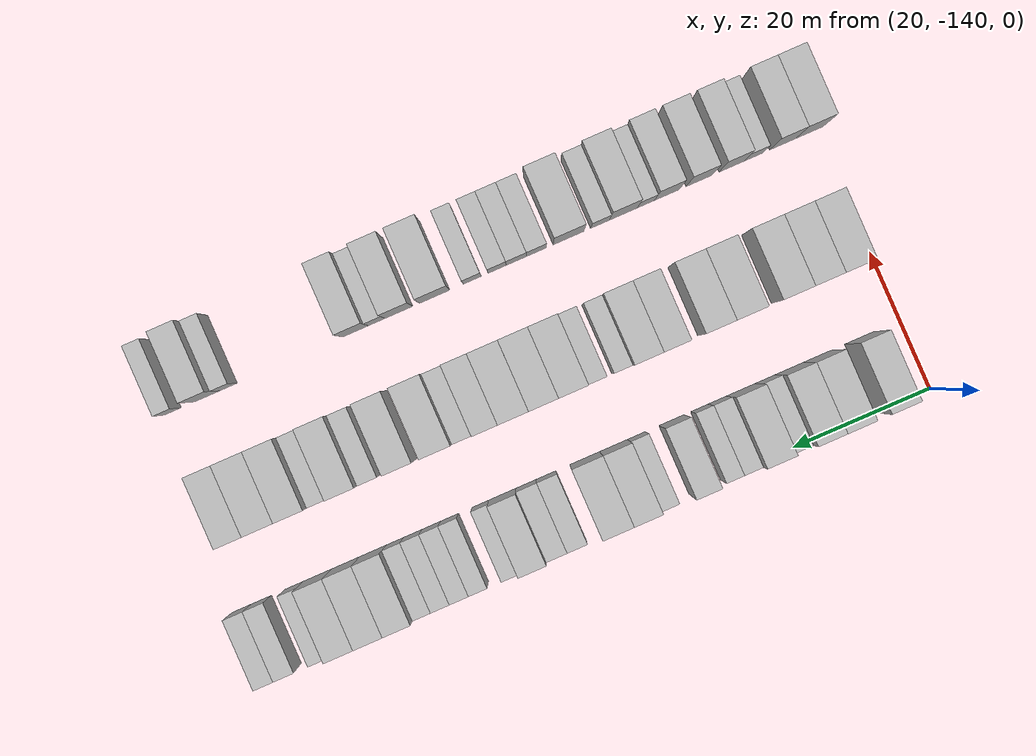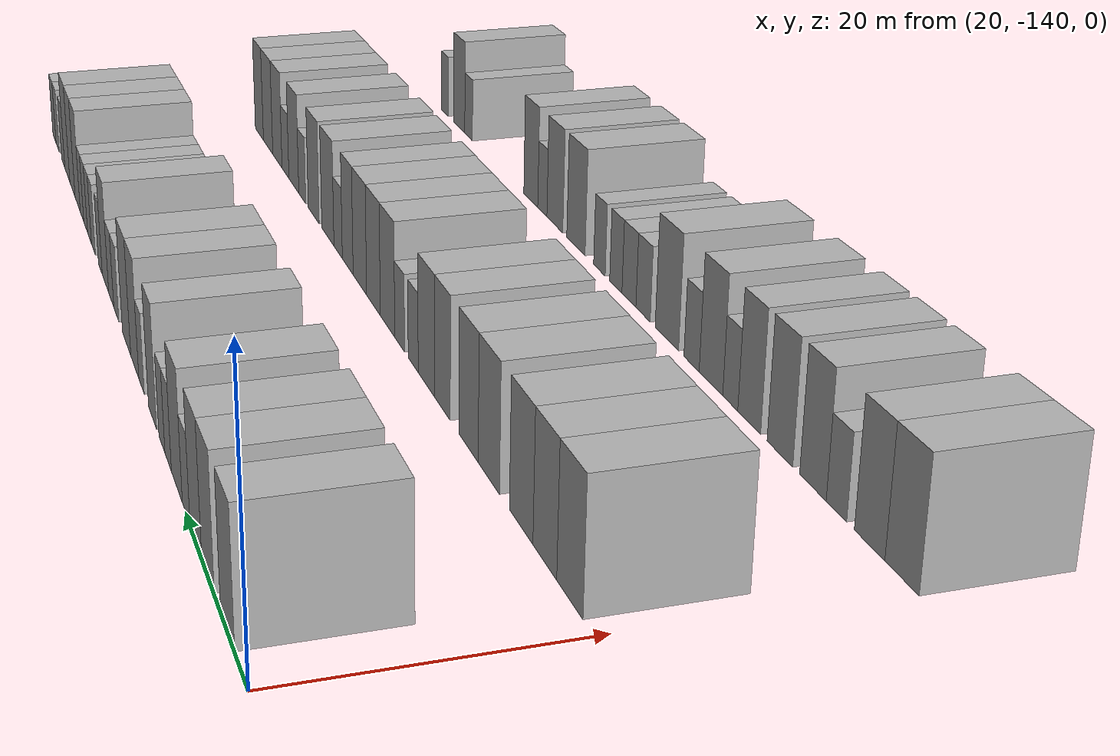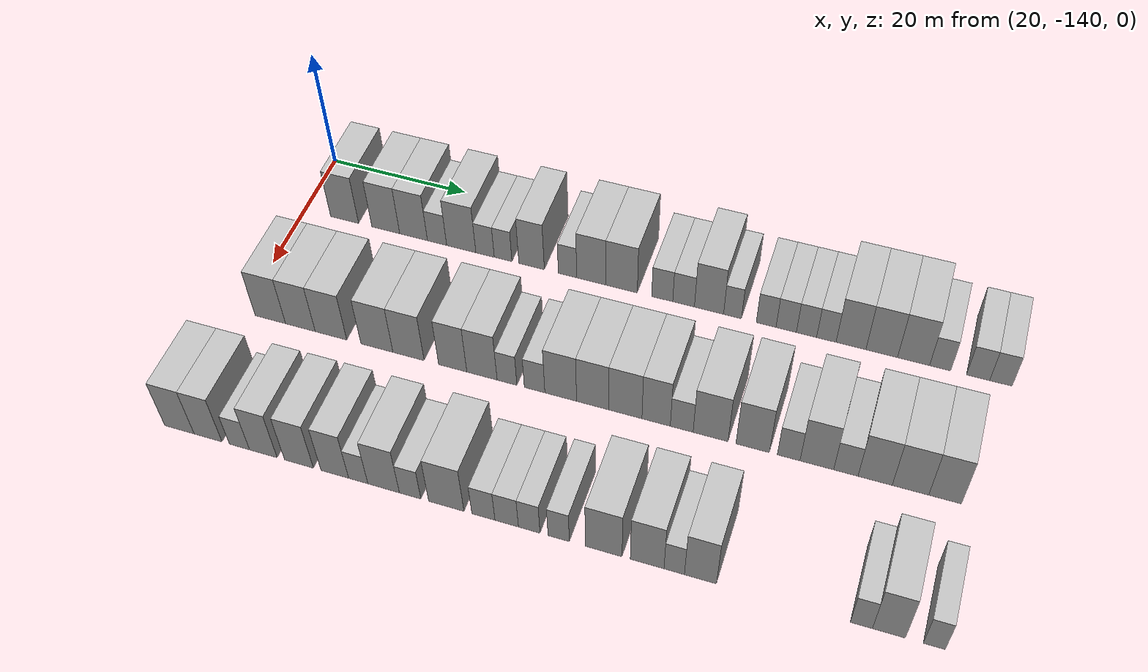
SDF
<sdf version="1.6">
 <world name="default">
  <model name="building_18">
   <static>1</static>
   <pose>25.0000 -134.0115 0 0.000000 0.000000 0.000000</pose>
   <link name="link">
    <pose>0 0 4.50 0 0 0</pose>
    <collision name="collision"><geometry><box><size>10.0000 4.2210 9.0000</size></box></geometry></collision>
    <visual name="visual">
     <cast_shadows>0</cast_shadows>
     <geometry><box><size>10.0000 4.2210 9.0000</size></box></geometry>
     <material>
      <script>
       <uri>model://HANNAS_wall/materials/scripts</uri>
       <uri>model://HANNAS_wall/materials/textures</uri>
       <name>vrc/HANNAS_wall</name>
      </script>
     </material>
    </visual>
   </link>
  </model>
  <model name="building_19">
   <static>1</static>
   <pose>25.0000 -127.8143 0 0.000000 0.000000 0.000000</pose>
   <link name="link">
    <pose>0 0 4.50 0 0 0</pose>
    <collision name="collision"><geometry><box><size>10.0000 4.1734 9.0000</size></box></geometry></collision>
    <visual name="visual">
     <cast_shadows>0</cast_shadows>
     <geometry><box><size>10.0000 4.1734 9.0000</size></box></geometry>
     <material>
      <script>
       <uri>model://HANNAS_wall/materials/scripts</uri>
       <uri>model://HANNAS_wall/materials/textures</uri>
       <name>vrc/HANNAS_wall</name>
      </script>
     </material>
    </visual>
   </link>
  </model>
  <model name="building_20">
   <static>1</static>
   <pose>25.0000 -123.6665 0 0.000000 0.000000 0.000000</pose>
   <link name="link">
    <pose>0 0 4.50 0 0 0</pose>
    <collision name="collision"><geometry><box><size>10.0000 4.1221 9.0000</size></box></geometry></collision>
    <visual name="visual">
     <cast_shadows>0</cast_shadows>
     <geometry><box><size>10.0000 4.1221 9.0000</size></box></geometry>
     <material>
      <script>
       <uri>model://HANNAS_wall/materials/scripts</uri>
       <uri>model://HANNAS_wall/materials/textures</uri>
       <name>vrc/HANNAS_wall</name>
      </script>
     </material>
    </visual>
   </link>
  </model>
  <model name="building_21">
   <static>1</static>
   <pose>25.0000 -120.1904 0 0.000000 0.000000 0.000000</pose>
   <link name="link">
    <pose>0 0 3.00 0 0 0</pose>
    <collision name="collision"><geometry><box><size>10.0000 2.8301 6.0000</size></box></geometry></collision>
    <visual name="visual">
     <cast_shadows>0</cast_shadows>
     <geometry><box><size>10.0000 2.8301 6.0000</size></box></geometry>
     <material>
      <script>
       <uri>model://HANNAS_wall/materials/scripts</uri>
       <uri>model://HANNAS_wall/materials/textures</uri>
       <name>vrc/HANNAS_wall</name>
      </script>
     </material>
    </visual>
   </link>
  </model>
  <model name="building_22">
   <static>1</static>
   <pose>25.0000 -116.6397 0 0.000000 0.000000 0.000000</pose>
   <link name="link">
    <pose>0 0 4.50 0 0 0</pose>
    <collision name="collision"><geometry><box><size>10.0000 4.2713 9.0000</size></box></geometry></collision>
    <visual name="visual">
     <cast_shadows>0</cast_shadows>
     <geometry><box><size>10.0000 4.2713 9.0000</size></box></geometry>
     <material>
      <script>
       <uri>model://HANNAS_wall/materials/scripts</uri>
       <uri>model://HANNAS_wall/materials/textures</uri>
       <name>vrc/HANNAS_wall</name>
      </script>
     </material>
    </visual>
   </link>
  </model>
  <model name="building_23">
   <static>1</static>
   <pose>25.0000 -113.1678 0 0.000000 0.000000 0.000000</pose>
   <link name="link">
    <pose>0 0 3.00 0 0 0</pose>
    <collision name="collision"><geometry><box><size>10.0000 2.6727 6.0000</size></box></geometry></collision>
    <visual name="visual">
     <cast_shadows>0</cast_shadows>
     <geometry><box><size>10.0000 2.6727 6.0000</size></box></geometry>
     <material>
      <script>
       <uri>model://HANNAS_wall/materials/scripts</uri>
       <uri>model://HANNAS_wall/materials/textures</uri>
       <name>vrc/HANNAS_wall</name>
      </script>
     </material>
    </visual>
   </link>
  </model>
  <model name="building_24">
   <static>1</static>
   <pose>25.0000 -110.5505 0 0.000000 0.000000 0.000000</pose>
   <link name="link">
    <pose>0 0 3.00 0 0 0</pose>
    <collision name="collision"><geometry><box><size>10.0000 2.5619 6.0000</size></box></geometry></collision>
    <visual name="visual">
     <cast_shadows>0</cast_shadows>
     <geometry><box><size>10.0000 2.5619 6.0000</size></box></geometry>
     <material>
      <script>
       <uri>model://HANNAS_wall/materials/scripts</uri>
       <uri>model://HANNAS_wall/materials/textures</uri>
       <name>vrc/HANNAS_wall</name>
      </script>
     </material>
    </visual>
   </link>
  </model>
  <model name="building_25">
   <static>1</static>
   <pose>25.0000 -106.4432 0 0.000000 0.000000 0.000000</pose>
   <link name="link">
    <pose>0 0 4.50 0 0 0</pose>
    <collision name="collision"><geometry><box><size>10.0000 3.6527 9.0000</size></box></geometry></collision>
    <visual name="visual">
     <cast_shadows>0</cast_shadows>
     <geometry><box><size>10.0000 3.6527 9.0000</size></box></geometry>
     <material>
      <script>
       <uri>model://HANNAS_wall/materials/scripts</uri>
       <uri>model://HANNAS_wall/materials/textures</uri>
       <name>vrc/HANNAS_wall</name>
      </script>
     </material>
    </visual>
   </link>
  </model>
  <model name="building_26">
   <static>1</static>
   <pose>25.0000 -101.3097 0 0.000000 0.000000 0.000000</pose>
   <link name="link">
    <pose>0 0 3.00 0 0 0</pose>
    <collision name="collision"><geometry><box><size>10.0000 2.6143 6.0000</size></box></geometry></collision>
    <visual name="visual">
     <cast_shadows>0</cast_shadows>
     <geometry><box><size>10.0000 2.6143 6.0000</size></box></geometry>
     <material>
      <script>
       <uri>model://HANNAS_wall/materials/scripts</uri>
       <uri>model://HANNAS_wall/materials/textures</uri>
       <name>vrc/HANNAS_wall</name>
      </script>
     </material>
    </visual>
   </link>
  </model>
  <model name="building_27">
   <static>1</static>
   <pose>25.0000 -97.9586 0 0.000000 0.000000 0.000000</pose>
   <link name="link">
    <pose>0 0 4.50 0 0 0</pose>
    <collision name="collision"><geometry><box><size>10.0000 4.0878 9.0000</size></box></geometry></collision>
    <visual name="visual">
     <cast_shadows>0</cast_shadows>
     <geometry><box><size>10.0000 4.0878 9.0000</size></box></geometry>
     <material>
      <script>
       <uri>model://HANNAS_wall/materials/scripts</uri>
       <uri>model://HANNAS_wall/materials/textures</uri>
       <name>vrc/HANNAS_wall</name>
      </script>
     </material>
    </visual>
   </link>
  </model>
  <model name="building_28">
   <static>1</static>
   <pose>25.0000 -93.7101 0 0.000000 0.000000 0.000000</pose>
   <link name="link">
    <pose>0 0 4.50 0 0 0</pose>
    <collision name="collision"><geometry><box><size>10.0000 4.4091 9.0000</size></box></geometry></collision>
    <visual name="visual">
     <cast_shadows>0</cast_shadows>
     <geometry><box><size>10.0000 4.4091 9.0000</size></box></geometry>
     <material>
      <script>
       <uri>model://HANNAS_wall/materials/scripts</uri>
       <uri>model://HANNAS_wall/materials/textures</uri>
       <name>vrc/HANNAS_wall</name>
      </script>
     </material>
    </visual>
   </link>
  </model>
  <model name="building_29">
   <static>1</static>
   <pose>25.0000 -88.0533 0 0.000000 0.000000 0.000000</pose>
   <link name="link">
    <pose>0 0 3.00 0 0 0</pose>
    <collision name="collision"><geometry><box><size>10.0000 2.9044 6.0000</size></box></geometry></collision>
    <visual name="visual">
     <cast_shadows>0</cast_shadows>
     <geometry><box><size>10.0000 2.9044 6.0000</size></box></geometry>
     <material>
      <script>
       <uri>model://HANNAS_wall/materials/scripts</uri>
       <uri>model://HANNAS_wall/materials/textures</uri>
       <name>vrc/HANNAS_wall</name>
      </script>
     </material>
    </visual>
   </link>
  </model>
  <model name="building_30">
   <static>1</static>
   <pose>25.0000 -85.1096 0 0.000000 0.000000 0.000000</pose>
   <link name="link">
    <pose>0 0 3.00 0 0 0</pose>
    <collision name="collision"><geometry><box><size>10.0000 2.9830 6.0000</size></box></geometry></collision>
    <visual name="visual">
     <cast_shadows>0</cast_shadows>
     <geometry><box><size>10.0000 2.9830 6.0000</size></box></geometry>
     <material>
      <script>
       <uri>model://HANNAS_wall/materials/scripts</uri>
       <uri>model://HANNAS_wall/materials/textures</uri>
       <name>vrc/HANNAS_wall</name>
      </script>
     </material>
    </visual>
   </link>
  </model>
  <model name="building_31">
   <static>1</static>
   <pose>25.0000 -81.6322 0 0.000000 0.000000 0.000000</pose>
   <link name="link">
    <pose>0 0 4.50 0 0 0</pose>
    <collision name="collision"><geometry><box><size>10.0000 3.9718 9.0000</size></box></geometry></collision>
    <visual name="visual">
     <cast_shadows>0</cast_shadows>
     <geometry><box><size>10.0000 3.9718 9.0000</size></box></geometry>
     <material>
      <script>
       <uri>model://HANNAS_wall/materials/scripts</uri>
       <uri>model://HANNAS_wall/materials/textures</uri>
       <name>vrc/HANNAS_wall</name>
      </script>
     </material>
    </visual>
   </link>
  </model>
  <model name="building_32">
   <static>1</static>
   <pose>25.0000 -78.4338 0 0.000000 0.000000 0.000000</pose>
   <link name="link">
    <pose>0 0 3.00 0 0 0</pose>
    <collision name="collision"><geometry><box><size>10.0000 2.4251 6.0000</size></box></geometry></collision>
    <visual name="visual">
     <cast_shadows>0</cast_shadows>
     <geometry><box><size>10.0000 2.4251 6.0000</size></box></geometry>
     <material>
      <script>
       <uri>model://HANNAS_wall/materials/scripts</uri>
       <uri>model://HANNAS_wall/materials/textures</uri>
       <name>vrc/HANNAS_wall</name>
      </script>
     </material>
    </visual>
   </link>
  </model>
  <model name="building_33">
   <static>1</static>
   <pose>25.0000 -73.8960 0 0.000000 0.000000 0.000000</pose>
   <link name="link">
    <pose>0 0 3.00 0 0 0</pose>
    <collision name="collision"><geometry><box><size>10.0000 2.6504 6.0000</size></box></geometry></collision>
    <visual name="visual">
     <cast_shadows>0</cast_shadows>
     <geometry><box><size>10.0000 2.6504 6.0000</size></box></geometry>
     <material>
      <script>
       <uri>model://HANNAS_wall/materials/scripts</uri>
       <uri>model://HANNAS_wall/materials/textures</uri>
       <name>vrc/HANNAS_wall</name>
      </script>
     </material>
    </visual>
   </link>
  </model>
  <model name="building_34">
   <static>1</static>
   <pose>25.0000 -71.2138 0 0.000000 0.000000 0.000000</pose>
   <link name="link">
    <pose>0 0 3.00 0 0 0</pose>
    <collision name="collision"><geometry><box><size>10.0000 2.7140 6.0000</size></box></geometry></collision>
    <visual name="visual">
     <cast_shadows>0</cast_shadows>
     <geometry><box><size>10.0000 2.7140 6.0000</size></box></geometry>
     <material>
      <script>
       <uri>model://HANNAS_wall/materials/scripts</uri>
       <uri>model://HANNAS_wall/materials/textures</uri>
       <name>vrc/HANNAS_wall</name>
      </script>
     </material>
    </visual>
   </link>
  </model>
  <model name="building_35">
   <static>1</static>
   <pose>25.0000 -68.5138 0 0.000000 0.000000 0.000000</pose>
   <link name="link">
    <pose>0 0 3.00 0 0 0</pose>
    <collision name="collision"><geometry><box><size>10.0000 2.6860 6.0000</size></box></geometry></collision>
    <visual name="visual">
     <cast_shadows>0</cast_shadows>
     <geometry><box><size>10.0000 2.6860 6.0000</size></box></geometry>
     <material>
      <script>
       <uri>model://HANNAS_wall/materials/scripts</uri>
       <uri>model://HANNAS_wall/materials/textures</uri>
       <name>vrc/HANNAS_wall</name>
      </script>
     </material>
    </visual>
   </link>
  </model>
  <model name="building_36">
   <static>1</static>
   <pose>25.0000 -65.8898 0 0.000000 0.000000 0.000000</pose>
   <link name="link">
    <pose>0 0 3.00 0 0 0</pose>
    <collision name="collision"><geometry><box><size>10.0000 2.5622 6.0000</size></box></geometry></collision>
    <visual name="visual">
     <cast_shadows>0</cast_shadows>
     <geometry><box><size>10.0000 2.5622 6.0000</size></box></geometry>
     <material>
      <script>
       <uri>model://HANNAS_wall/materials/scripts</uri>
       <uri>model://HANNAS_wall/materials/textures</uri>
       <name>vrc/HANNAS_wall</name>
      </script>
     </material>
    </visual>
   </link>
  </model>
  <model name="building_37">
   <static>1</static>
   <pose>25.0000 -62.6534 0 0.000000 0.000000 0.000000</pose>
   <link name="link">
    <pose>0 0 4.50 0 0 0</pose>
    <collision name="collision"><geometry><box><size>10.0000 3.9106 9.0000</size></box></geometry></collision>
    <visual name="visual">
     <cast_shadows>0</cast_shadows>
     <geometry><box><size>10.0000 3.9106 9.0000</size></box></geometry>
     <material>
      <script>
       <uri>model://HANNAS_wall/materials/scripts</uri>
       <uri>model://HANNAS_wall/materials/textures</uri>
       <name>vrc/HANNAS_wall</name>
      </script>
     </material>
    </visual>
   </link>
  </model>
  <model name="building_38">
   <static>1</static>
   <pose>25.0000 -58.6455 0 0.000000 0.000000 0.000000</pose>
   <link name="link">
    <pose>0 0 4.50 0 0 0</pose>
    <collision name="collision"><geometry><box><size>10.0000 4.1052 9.0000</size></box></geometry></collision>
    <visual name="visual">
     <cast_shadows>0</cast_shadows>
     <geometry><box><size>10.0000 4.1052 9.0000</size></box></geometry>
     <material>
      <script>
       <uri>model://HANNAS_wall/materials/scripts</uri>
       <uri>model://HANNAS_wall/materials/textures</uri>
       <name>vrc/HANNAS_wall</name>
      </script>
     </material>
    </visual>
   </link>
  </model>
  <model name="building_39">
   <static>1</static>
   <pose>25.0000 -54.5191 0 0.000000 0.000000 0.000000</pose>
   <link name="link">
    <pose>0 0 4.50 0 0 0</pose>
    <collision name="collision"><geometry><box><size>10.0000 4.1475 9.0000</size></box></geometry></collision>
    <visual name="visual">
     <cast_shadows>0</cast_shadows>
     <geometry><box><size>10.0000 4.1475 9.0000</size></box></geometry>
     <material>
      <script>
       <uri>model://HANNAS_wall/materials/scripts</uri>
       <uri>model://HANNAS_wall/materials/textures</uri>
       <name>vrc/HANNAS_wall</name>
      </script>
     </material>
    </visual>
   </link>
  </model>
  <model name="building_40">
   <static>1</static>
   <pose>25.0000 -51.0883 0 0.000000 0.000000 0.000000</pose>
   <link name="link">
    <pose>0 0 3.00 0 0 0</pose>
    <collision name="collision"><geometry><box><size>10.0000 2.7141 6.0000</size></box></geometry></collision>
    <visual name="visual">
     <cast_shadows>0</cast_shadows>
     <geometry><box><size>10.0000 2.7141 6.0000</size></box></geometry>
     <material>
      <script>
       <uri>model://HANNAS_wall/materials/scripts</uri>
       <uri>model://HANNAS_wall/materials/textures</uri>
       <name>vrc/HANNAS_wall</name>
      </script>
     </material>
    </visual>
   </link>
  </model>
  <model name="building_41">
   <static>1</static>
   <pose>25.0000 -46.2631 0 0.000000 0.000000 0.000000</pose>
   <link name="link">
    <pose>0 0 3.00 0 0 0</pose>
    <collision name="collision"><geometry><box><size>10.0000 2.9363 6.0000</size></box></geometry></collision>
    <visual name="visual">
     <cast_shadows>0</cast_shadows>
     <geometry><box><size>10.0000 2.9363 6.0000</size></box></geometry>
     <material>
      <script>
       <uri>model://HANNAS_wall/materials/scripts</uri>
       <uri>model://HANNAS_wall/materials/textures</uri>
       <name>vrc/HANNAS_wall</name>
      </script>
     </material>
    </visual>
   </link>
  </model>
  <model name="building_42">
   <static>1</static>
   <pose>25.0000 -43.3785 0 0.000000 0.000000 0.000000</pose>
   <link name="link">
    <pose>0 0 3.00 0 0 0</pose>
    <collision name="collision"><geometry><box><size>10.0000 2.8329 6.0000</size></box></geometry></collision>
    <visual name="visual">
     <cast_shadows>0</cast_shadows>
     <geometry><box><size>10.0000 2.8329 6.0000</size></box></geometry>
     <material>
      <script>
       <uri>model://HANNAS_wall/materials/scripts</uri>
       <uri>model://HANNAS_wall/materials/textures</uri>
       <name>vrc/HANNAS_wall</name>
      </script>
     </material>
    </visual>
   </link>
  </model>
  <model name="building_134">
   <static>1</static>
   <pose>44.0000 -136.0077 0 0.000000 0.000000 0.000000</pose>
   <link name="link">
    <pose>0 0 4.50 0 0 0</pose>
    <collision name="collision"><geometry><box><size>10.0000 4.3832 9.0000</size></box></geometry></collision>
    <visual name="visual">
     <cast_shadows>0</cast_shadows>
     <geometry><box><size>10.0000 4.3832 9.0000</size></box></geometry>
     <material>
      <script>
       <uri>model://HANNAS_wall/materials/scripts</uri>
       <uri>model://HANNAS_wall/materials/textures</uri>
       <name>vrc/HANNAS_wall</name>
      </script>
     </material>
    </visual>
   </link>
  </model>
  <model name="building_135">
   <static>1</static>
   <pose>44.0000 -131.6893 0 0.000000 0.000000 0.000000</pose>
   <link name="link">
    <pose>0 0 4.50 0 0 0</pose>
    <collision name="collision"><geometry><box><size>10.0000 4.2536 9.0000</size></box></geometry></collision>
    <visual name="visual">
     <cast_shadows>0</cast_shadows>
     <geometry><box><size>10.0000 4.2536 9.0000</size></box></geometry>
     <material>
      <script>
       <uri>model://HANNAS_wall/materials/scripts</uri>
       <uri>model://HANNAS_wall/materials/textures</uri>
       <name>vrc/HANNAS_wall</name>
      </script>
     </material>
    </visual>
   </link>
  </model>
  <model name="building_136">
   <static>1</static>
   <pose>44.0000 -127.3224 0 0.000000 0.000000 0.000000</pose>
   <link name="link">
    <pose>0 0 4.50 0 0 0</pose>
    <collision name="collision"><geometry><box><size>10.0000 4.4802 9.0000</size></box></geometry></collision>
    <visual name="visual">
     <cast_shadows>0</cast_shadows>
     <geometry><box><size>10.0000 4.4802 9.0000</size></box></geometry>
     <material>
      <script>
       <uri>model://HANNAS_wall/materials/scripts</uri>
       <uri>model://HANNAS_wall/materials/textures</uri>
       <name>vrc/HANNAS_wall</name>
      </script>
     </material>
    </visual>
   </link>
  </model>
  <model name="building_137">
   <static>1</static>
   <pose>44.0000 -120.8423 0 0.000000 0.000000 0.000000</pose>
   <link name="link">
    <pose>0 0 4.50 0 0 0</pose>
    <collision name="collision"><geometry><box><size>10.0000 4.4800 9.0000</size></box></geometry></collision>
    <visual name="visual">
     <cast_shadows>0</cast_shadows>
     <geometry><box><size>10.0000 4.4800 9.0000</size></box></geometry>
     <material>
      <script>
       <uri>model://HANNAS_wall/materials/scripts</uri>
       <uri>model://HANNAS_wall/materials/textures</uri>
       <name>vrc/HANNAS_wall</name>
      </script>
     </material>
    </visual>
   </link>
  </model>
  <model name="building_138">
   <static>1</static>
   <pose>44.0000 -116.4358 0 0.000000 0.000000 0.000000</pose>
   <link name="link">
    <pose>0 0 4.50 0 0 0</pose>
    <collision name="collision"><geometry><box><size>10.0000 4.3330 9.0000</size></box></geometry></collision>
    <visual name="visual">
     <cast_shadows>0</cast_shadows>
     <geometry><box><size>10.0000 4.3330 9.0000</size></box></geometry>
     <material>
      <script>
       <uri>model://HANNAS_wall/materials/scripts</uri>
       <uri>model://HANNAS_wall/materials/textures</uri>
       <name>vrc/HANNAS_wall</name>
      </script>
     </material>
    </visual>
   </link>
  </model>
  <model name="building_139">
   <static>1</static>
   <pose>44.0000 -110.3389 0 0.000000 0.000000 0.000000</pose>
   <link name="link">
    <pose>0 0 4.50 0 0 0</pose>
    <collision name="collision"><geometry><box><size>10.0000 3.8607 9.0000</size></box></geometry></collision>
    <visual name="visual">
     <cast_shadows>0</cast_shadows>
     <geometry><box><size>10.0000 3.8607 9.0000</size></box></geometry>
     <material>
      <script>
       <uri>model://HANNAS_wall/materials/scripts</uri>
       <uri>model://HANNAS_wall/materials/textures</uri>
       <name>vrc/HANNAS_wall</name>
      </script>
     </material>
    </visual>
   </link>
  </model>
  <model name="building_140">
   <static>1</static>
   <pose>44.0000 -106.3495 0 0.000000 0.000000 0.000000</pose>
   <link name="link">
    <pose>0 0 4.50 0 0 0</pose>
    <collision name="collision"><geometry><box><size>10.0000 4.1181 9.0000</size></box></geometry></collision>
    <visual name="visual">
     <cast_shadows>0</cast_shadows>
     <geometry><box><size>10.0000 4.1181 9.0000</size></box></geometry>
     <material>
      <script>
       <uri>model://HANNAS_wall/materials/scripts</uri>
       <uri>model://HANNAS_wall/materials/textures</uri>
       <name>vrc/HANNAS_wall</name>
      </script>
     </material>
    </visual>
   </link>
  </model>
  <model name="building_141">
   <static>1</static>
   <pose>44.0000 -102.9559 0 0.000000 0.000000 0.000000</pose>
   <link name="link">
    <pose>0 0 3.00 0 0 0</pose>
    <collision name="collision"><geometry><box><size>10.0000 2.6690 6.0000</size></box></geometry></collision>
    <visual name="visual">
     <cast_shadows>0</cast_shadows>
     <geometry><box><size>10.0000 2.6690 6.0000</size></box></geometry>
     <material>
      <script>
       <uri>model://HANNAS_wall/materials/scripts</uri>
       <uri>model://HANNAS_wall/materials/textures</uri>
       <name>vrc/HANNAS_wall</name>
      </script>
     </material>
    </visual>
   </link>
  </model>
  <model name="building_142">
   <static>1</static>
   <pose>44.0000 -99.2500 0 0.000000 0.000000 0.000000</pose>
   <link name="link">
    <pose>0 0 3.00 0 0 0</pose>
    <collision name="collision"><geometry><box><size>10.0000 2.7429 6.0000</size></box></geometry></collision>
    <visual name="visual">
     <cast_shadows>0</cast_shadows>
     <geometry><box><size>10.0000 2.7429 6.0000</size></box></geometry>
     <material>
      <script>
       <uri>model://HANNAS_wall/materials/scripts</uri>
       <uri>model://HANNAS_wall/materials/textures</uri>
       <name>vrc/HANNAS_wall</name>
      </script>
     </material>
    </visual>
   </link>
  </model>
  <model name="building_143">
   <static>1</static>
   <pose>44.0000 -95.7715 0 0.000000 0.000000 0.000000</pose>
   <link name="link">
    <pose>0 0 4.50 0 0 0</pose>
    <collision name="collision"><geometry><box><size>10.0000 4.2140 9.0000</size></box></geometry></collision>
    <visual name="visual">
     <cast_shadows>0</cast_shadows>
     <geometry><box><size>10.0000 4.2140 9.0000</size></box></geometry>
     <material>
      <script>
       <uri>model://HANNAS_wall/materials/scripts</uri>
       <uri>model://HANNAS_wall/materials/textures</uri>
       <name>vrc/HANNAS_wall</name>
      </script>
     </material>
    </visual>
   </link>
  </model>
  <model name="building_144">
   <static>1</static>
   <pose>44.0000 -91.5618 0 0.000000 0.000000 0.000000</pose>
   <link name="link">
    <pose>0 0 4.50 0 0 0</pose>
    <collision name="collision"><geometry><box><size>10.0000 4.2055 9.0000</size></box></geometry></collision>
    <visual name="visual">
     <cast_shadows>0</cast_shadows>
     <geometry><box><size>10.0000 4.2055 9.0000</size></box></geometry>
     <material>
      <script>
       <uri>model://HANNAS_wall/materials/scripts</uri>
       <uri>model://HANNAS_wall/materials/textures</uri>
       <name>vrc/HANNAS_wall</name>
      </script>
     </material>
    </visual>
   </link>
  </model>
  <model name="building_145">
   <static>1</static>
   <pose>44.0000 -87.2860 0 0.000000 0.000000 0.000000</pose>
   <link name="link">
    <pose>0 0 4.50 0 0 0</pose>
    <collision name="collision"><geometry><box><size>10.0000 4.3459 9.0000</size></box></geometry></collision>
    <visual name="visual">
     <cast_shadows>0</cast_shadows>
     <geometry><box><size>10.0000 4.3459 9.0000</size></box></geometry>
     <material>
      <script>
       <uri>model://HANNAS_wall/materials/scripts</uri>
       <uri>model://HANNAS_wall/materials/textures</uri>
       <name>vrc/HANNAS_wall</name>
      </script>
     </material>
    </visual>
   </link>
  </model>
  <model name="building_146">
   <static>1</static>
   <pose>44.0000 -83.2817 0 0.000000 0.000000 0.000000</pose>
   <link name="link">
    <pose>0 0 4.50 0 0 0</pose>
    <collision name="collision"><geometry><box><size>10.0000 3.6628 9.0000</size></box></geometry></collision>
    <visual name="visual">
     <cast_shadows>0</cast_shadows>
     <geometry><box><size>10.0000 3.6628 9.0000</size></box></geometry>
     <material>
      <script>
       <uri>model://HANNAS_wall/materials/scripts</uri>
       <uri>model://HANNAS_wall/materials/textures</uri>
       <name>vrc/HANNAS_wall</name>
      </script>
     </material>
    </visual>
   </link>
  </model>
  <model name="building_147">
   <static>1</static>
   <pose>44.0000 -79.9849 0 0.000000 0.000000 0.000000</pose>
   <link name="link">
    <pose>0 0 3.00 0 0 0</pose>
    <collision name="collision"><geometry><box><size>10.0000 2.9308 6.0000</size></box></geometry></collision>
    <visual name="visual">
     <cast_shadows>0</cast_shadows>
     <geometry><box><size>10.0000 2.9308 6.0000</size></box></geometry>
     <material>
      <script>
       <uri>model://HANNAS_wall/materials/scripts</uri>
       <uri>model://HANNAS_wall/materials/textures</uri>
       <name>vrc/HANNAS_wall</name>
      </script>
     </material>
    </visual>
   </link>
  </model>
  <model name="building_148">
   <static>1</static>
   <pose>44.0000 -76.2989 0 0.000000 0.000000 0.000000</pose>
   <link name="link">
    <pose>0 0 4.50 0 0 0</pose>
    <collision name="collision"><geometry><box><size>10.0000 4.4410 9.0000</size></box></geometry></collision>
    <visual name="visual">
     <cast_shadows>0</cast_shadows>
     <geometry><box><size>10.0000 4.4410 9.0000</size></box></geometry>
     <material>
      <script>
       <uri>model://HANNAS_wall/materials/scripts</uri>
       <uri>model://HANNAS_wall/materials/textures</uri>
       <name>vrc/HANNAS_wall</name>
      </script>
     </material>
    </visual>
   </link>
  </model>
  <model name="building_149">
   <static>1</static>
   <pose>44.0000 -70.9763 0 0.000000 0.000000 0.000000</pose>
   <link name="link">
    <pose>0 0 4.50 0 0 0</pose>
    <collision name="collision"><geometry><box><size>10.0000 4.2043 9.0000</size></box></geometry></collision>
    <visual name="visual">
     <cast_shadows>0</cast_shadows>
     <geometry><box><size>10.0000 4.2043 9.0000</size></box></geometry>
     <material>
      <script>
       <uri>model://HANNAS_wall/materials/scripts</uri>
       <uri>model://HANNAS_wall/materials/textures</uri>
       <name>vrc/HANNAS_wall</name>
      </script>
     </material>
    </visual>
   </link>
  </model>
  <model name="building_150">
   <static>1</static>
   <pose>44.0000 -66.4641 0 0.000000 0.000000 0.000000</pose>
   <link name="link">
    <pose>0 0 3.00 0 0 0</pose>
    <collision name="collision"><geometry><box><size>10.0000 2.8200 6.0000</size></box></geometry></collision>
    <visual name="visual">
     <cast_shadows>0</cast_shadows>
     <geometry><box><size>10.0000 2.8200 6.0000</size></box></geometry>
     <material>
      <script>
       <uri>model://HANNAS_wall/materials/scripts</uri>
       <uri>model://HANNAS_wall/materials/textures</uri>
       <name>vrc/HANNAS_wall</name>
      </script>
     </material>
    </visual>
   </link>
  </model>
  <model name="building_151">
   <static>1</static>
   <pose>44.0000 -62.9763 0 0.000000 0.000000 0.000000</pose>
   <link name="link">
    <pose>0 0 4.50 0 0 0</pose>
    <collision name="collision"><geometry><box><size>10.0000 4.1556 9.0000</size></box></geometry></collision>
    <visual name="visual">
     <cast_shadows>0</cast_shadows>
     <geometry><box><size>10.0000 4.1556 9.0000</size></box></geometry>
     <material>
      <script>
       <uri>model://HANNAS_wall/materials/scripts</uri>
       <uri>model://HANNAS_wall/materials/textures</uri>
       <name>vrc/HANNAS_wall</name>
      </script>
     </material>
    </visual>
   </link>
  </model>
  <model name="building_152">
   <static>1</static>
   <pose>44.0000 -59.4043 0 0.000000 0.000000 0.000000</pose>
   <link name="link">
    <pose>0 0 3.00 0 0 0</pose>
    <collision name="collision"><geometry><box><size>10.0000 2.9884 6.0000</size></box></geometry></collision>
    <visual name="visual">
     <cast_shadows>0</cast_shadows>
     <geometry><box><size>10.0000 2.9884 6.0000</size></box></geometry>
     <material>
      <script>
       <uri>model://HANNAS_wall/materials/scripts</uri>
       <uri>model://HANNAS_wall/materials/textures</uri>
       <name>vrc/HANNAS_wall</name>
      </script>
     </material>
    </visual>
   </link>
  </model>
  <model name="building_153">
   <static>1</static>
   <pose>44.0000 -55.8276 0 0.000000 0.000000 0.000000</pose>
   <link name="link">
    <pose>0 0 4.50 0 0 0</pose>
    <collision name="collision"><geometry><box><size>10.0000 4.1650 9.0000</size></box></geometry></collision>
    <visual name="visual">
     <cast_shadows>0</cast_shadows>
     <geometry><box><size>10.0000 4.1650 9.0000</size></box></geometry>
     <material>
      <script>
       <uri>model://HANNAS_wall/materials/scripts</uri>
       <uri>model://HANNAS_wall/materials/textures</uri>
       <name>vrc/HANNAS_wall</name>
      </script>
     </material>
    </visual>
   </link>
  </model>
  <model name="building_154">
   <static>1</static>
   <pose>44.0000 -51.5497 0 0.000000 0.000000 0.000000</pose>
   <link name="link">
    <pose>0 0 4.50 0 0 0</pose>
    <collision name="collision"><geometry><box><size>10.0000 4.3908 9.0000</size></box></geometry></collision>
    <visual name="visual">
     <cast_shadows>0</cast_shadows>
     <geometry><box><size>10.0000 4.3908 9.0000</size></box></geometry>
     <material>
      <script>
       <uri>model://HANNAS_wall/materials/scripts</uri>
       <uri>model://HANNAS_wall/materials/textures</uri>
       <name>vrc/HANNAS_wall</name>
      </script>
     </material>
    </visual>
   </link>
  </model>
  <model name="building_155">
   <static>1</static>
   <pose>44.0000 -47.3965 0 0.000000 0.000000 0.000000</pose>
   <link name="link">
    <pose>0 0 4.50 0 0 0</pose>
    <collision name="collision"><geometry><box><size>10.0000 3.9158 9.0000</size></box></geometry></collision>
    <visual name="visual">
     <cast_shadows>0</cast_shadows>
     <geometry><box><size>10.0000 3.9158 9.0000</size></box></geometry>
     <material>
      <script>
       <uri>model://HANNAS_wall/materials/scripts</uri>
       <uri>model://HANNAS_wall/materials/textures</uri>
       <name>vrc/HANNAS_wall</name>
      </script>
     </material>
    </visual>
   </link>
  </model>
  <model name="building_253">
   <static>1</static>
   <pose>63.0000 -139.0123 0 0.000000 0.000000 0.000000</pose>
   <link name="link">
    <pose>0 0 4.50 0 0 0</pose>
    <collision name="collision"><geometry><box><size>10.0000 4.0520 9.0000</size></box></geometry></collision>
    <visual name="visual">
     <cast_shadows>0</cast_shadows>
     <geometry><box><size>10.0000 4.0520 9.0000</size></box></geometry>
     <material>
      <script>
       <uri>model://HANNAS_wall/materials/scripts</uri>
       <uri>model://HANNAS_wall/materials/textures</uri>
       <name>vrc/HANNAS_wall</name>
      </script>
     </material>
    </visual>
   </link>
  </model>
  <model name="building_254">
   <static>1</static>
   <pose>63.0000 -135.0791 0 0.000000 0.000000 0.000000</pose>
   <link name="link">
    <pose>0 0 4.50 0 0 0</pose>
    <collision name="collision"><geometry><box><size>10.0000 3.8143 9.0000</size></box></geometry></collision>
    <visual name="visual">
     <cast_shadows>0</cast_shadows>
     <geometry><box><size>10.0000 3.8143 9.0000</size></box></geometry>
     <material>
      <script>
       <uri>model://HANNAS_wall/materials/scripts</uri>
       <uri>model://HANNAS_wall/materials/textures</uri>
       <name>vrc/HANNAS_wall</name>
      </script>
     </material>
    </visual>
   </link>
  </model>
  <model name="building_255">
   <static>1</static>
   <pose>63.0000 -130.8054 0 0.000000 0.000000 0.000000</pose>
   <link name="link">
    <pose>0 0 3.00 0 0 0</pose>
    <collision name="collision"><geometry><box><size>10.0000 2.7331 6.0000</size></box></geometry></collision>
    <visual name="visual">
     <cast_shadows>0</cast_shadows>
     <geometry><box><size>10.0000 2.7331 6.0000</size></box></geometry>
     <material>
      <script>
       <uri>model://HANNAS_wall/materials/scripts</uri>
       <uri>model://HANNAS_wall/materials/textures</uri>
       <name>vrc/HANNAS_wall</name>
      </script>
     </material>
    </visual>
   </link>
  </model>
  <model name="building_256">
   <static>1</static>
   <pose>63.0000 -127.5821 0 0.000000 0.000000 0.000000</pose>
   <link name="link">
    <pose>0 0 4.50 0 0 0</pose>
    <collision name="collision"><geometry><box><size>10.0000 3.7135 9.0000</size></box></geometry></collision>
    <visual name="visual">
     <cast_shadows>0</cast_shadows>
     <geometry><box><size>10.0000 3.7135 9.0000</size></box></geometry>
     <material>
      <script>
       <uri>model://HANNAS_wall/materials/scripts</uri>
       <uri>model://HANNAS_wall/materials/textures</uri>
       <name>vrc/HANNAS_wall</name>
      </script>
     </material>
    </visual>
   </link>
  </model>
  <model name="building_257">
   <static>1</static>
   <pose>63.0000 -122.8031 0 0.000000 0.000000 0.000000</pose>
   <link name="link">
    <pose>0 0 4.50 0 0 0</pose>
    <collision name="collision"><geometry><box><size>10.0000 3.8445 9.0000</size></box></geometry></collision>
    <visual name="visual">
     <cast_shadows>0</cast_shadows>
     <geometry><box><size>10.0000 3.8445 9.0000</size></box></geometry>
     <material>
      <script>
       <uri>model://HANNAS_wall/materials/scripts</uri>
       <uri>model://HANNAS_wall/materials/textures</uri>
       <name>vrc/HANNAS_wall</name>
      </script>
     </material>
    </visual>
   </link>
  </model>
  <model name="building_258">
   <static>1</static>
   <pose>63.0000 -118.0540 0 0.000000 0.000000 0.000000</pose>
   <link name="link">
    <pose>0 0 4.50 0 0 0</pose>
    <collision name="collision"><geometry><box><size>10.0000 3.6537 9.0000</size></box></geometry></collision>
    <visual name="visual">
     <cast_shadows>0</cast_shadows>
     <geometry><box><size>10.0000 3.6537 9.0000</size></box></geometry>
     <material>
      <script>
       <uri>model://HANNAS_wall/materials/scripts</uri>
       <uri>model://HANNAS_wall/materials/textures</uri>
       <name>vrc/HANNAS_wall</name>
      </script>
     </material>
    </visual>
   </link>
  </model>
  <model name="building_259">
   <static>1</static>
   <pose>63.0000 -114.9733 0 0.000000 0.000000 0.000000</pose>
   <link name="link">
    <pose>0 0 3.00 0 0 0</pose>
    <collision name="collision"><geometry><box><size>10.0000 2.5077 6.0000</size></box></geometry></collision>
    <visual name="visual">
     <cast_shadows>0</cast_shadows>
     <geometry><box><size>10.0000 2.5077 6.0000</size></box></geometry>
     <material>
      <script>
       <uri>model://HANNAS_wall/materials/scripts</uri>
       <uri>model://HANNAS_wall/materials/textures</uri>
       <name>vrc/HANNAS_wall</name>
      </script>
     </material>
    </visual>
   </link>
  </model>
  <model name="building_260">
   <static>1</static>
   <pose>63.0000 -111.6717 0 0.000000 0.000000 0.000000</pose>
   <link name="link">
    <pose>0 0 4.50 0 0 0</pose>
    <collision name="collision"><geometry><box><size>10.0000 4.0954 9.0000</size></box></geometry></collision>
    <visual name="visual">
     <cast_shadows>0</cast_shadows>
     <geometry><box><size>10.0000 4.0954 9.0000</size></box></geometry>
     <material>
      <script>
       <uri>model://HANNAS_wall/materials/scripts</uri>
       <uri>model://HANNAS_wall/materials/textures</uri>
       <name>vrc/HANNAS_wall</name>
      </script>
     </material>
    </visual>
   </link>
  </model>
  <model name="building_261">
   <static>1</static>
   <pose>63.0000 -108.2393 0 0.000000 0.000000 0.000000</pose>
   <link name="link">
    <pose>0 0 3.00 0 0 0</pose>
    <collision name="collision"><geometry><box><size>10.0000 2.7694 6.0000</size></box></geometry></collision>
    <visual name="visual">
     <cast_shadows>0</cast_shadows>
     <geometry><box><size>10.0000 2.7694 6.0000</size></box></geometry>
     <material>
      <script>
       <uri>model://HANNAS_wall/materials/scripts</uri>
       <uri>model://HANNAS_wall/materials/textures</uri>
       <name>vrc/HANNAS_wall</name>
      </script>
     </material>
    </visual>
   </link>
  </model>
  <model name="building_262">
   <static>1</static>
   <pose>63.0000 -103.6063 0 0.000000 0.000000 0.000000</pose>
   <link name="link">
    <pose>0 0 4.50 0 0 0</pose>
    <collision name="collision"><geometry><box><size>10.0000 4.4967 9.0000</size></box></geometry></collision>
    <visual name="visual">
     <cast_shadows>0</cast_shadows>
     <geometry><box><size>10.0000 4.4967 9.0000</size></box></geometry>
     <material>
      <script>
       <uri>model://HANNAS_wall/materials/scripts</uri>
       <uri>model://HANNAS_wall/materials/textures</uri>
       <name>vrc/HANNAS_wall</name>
      </script>
     </material>
    </visual>
   </link>
  </model>
  <model name="building_263">
   <static>1</static>
   <pose>63.0000 -98.9020 0 0.000000 0.000000 0.000000</pose>
   <link name="link">
    <pose>0 0 3.00 0 0 0</pose>
    <collision name="collision"><geometry><box><size>10.0000 2.9119 6.0000</size></box></geometry></collision>
    <visual name="visual">
     <cast_shadows>0</cast_shadows>
     <geometry><box><size>10.0000 2.9119 6.0000</size></box></geometry>
     <material>
      <script>
       <uri>model://HANNAS_wall/materials/scripts</uri>
       <uri>model://HANNAS_wall/materials/textures</uri>
       <name>vrc/HANNAS_wall</name>
      </script>
     </material>
    </visual>
   </link>
  </model>
  <model name="building_264">
   <static>1</static>
   <pose>63.0000 -95.9725 0 0.000000 0.000000 0.000000</pose>
   <link name="link">
    <pose>0 0 3.00 0 0 0</pose>
    <collision name="collision"><geometry><box><size>10.0000 2.9472 6.0000</size></box></geometry></collision>
    <visual name="visual">
     <cast_shadows>0</cast_shadows>
     <geometry><box><size>10.0000 2.9472 6.0000</size></box></geometry>
     <material>
      <script>
       <uri>model://HANNAS_wall/materials/scripts</uri>
       <uri>model://HANNAS_wall/materials/textures</uri>
       <name>vrc/HANNAS_wall</name>
      </script>
     </material>
    </visual>
   </link>
  </model>
  <model name="building_265">
   <static>1</static>
   <pose>63.0000 -93.1610 0 0.000000 0.000000 0.000000</pose>
   <link name="link">
    <pose>0 0 3.00 0 0 0</pose>
    <collision name="collision"><geometry><box><size>10.0000 2.6759 6.0000</size></box></geometry></collision>
    <visual name="visual">
     <cast_shadows>0</cast_shadows>
     <geometry><box><size>10.0000 2.6759 6.0000</size></box></geometry>
     <material>
      <script>
       <uri>model://HANNAS_wall/materials/scripts</uri>
       <uri>model://HANNAS_wall/materials/textures</uri>
       <name>vrc/HANNAS_wall</name>
      </script>
     </material>
    </visual>
   </link>
  </model>
  <model name="building_266">
   <static>1</static>
   <pose>63.0000 -89.5095 0 0.000000 0.000000 0.000000</pose>
   <link name="link">
    <pose>0 0 3.00 0 0 0</pose>
    <collision name="collision"><geometry><box><size>10.0000 2.6270 6.0000</size></box></geometry></collision>
    <visual name="visual">
     <cast_shadows>0</cast_shadows>
     <geometry><box><size>10.0000 2.6270 6.0000</size></box></geometry>
     <material>
      <script>
       <uri>model://HANNAS_wall/materials/scripts</uri>
       <uri>model://HANNAS_wall/materials/textures</uri>
       <name>vrc/HANNAS_wall</name>
      </script>
     </material>
    </visual>
   </link>
  </model>
  <model name="building_267">
   <static>1</static>
   <pose>63.0000 -83.9814 0 0.000000 0.000000 0.000000</pose>
   <link name="link">
    <pose>0 0 4.50 0 0 0</pose>
    <collision name="collision"><geometry><box><size>10.0000 4.4293 9.0000</size></box></geometry></collision>
    <visual name="visual">
     <cast_shadows>0</cast_shadows>
     <geometry><box><size>10.0000 4.4293 9.0000</size></box></geometry>
     <material>
      <script>
       <uri>model://HANNAS_wall/materials/scripts</uri>
       <uri>model://HANNAS_wall/materials/textures</uri>
       <name>vrc/HANNAS_wall</name>
      </script>
     </material>
    </visual>
   </link>
  </model>
  <model name="building_268">
   <static>1</static>
   <pose>63.0000 -78.7381 0 0.000000 0.000000 0.000000</pose>
   <link name="link">
    <pose>0 0 4.50 0 0 0</pose>
    <collision name="collision"><geometry><box><size>10.0000 4.0572 9.0000</size></box></geometry></collision>
    <visual name="visual">
     <cast_shadows>0</cast_shadows>
     <geometry><box><size>10.0000 4.0572 9.0000</size></box></geometry>
     <material>
      <script>
       <uri>model://HANNAS_wall/materials/scripts</uri>
       <uri>model://HANNAS_wall/materials/textures</uri>
       <name>vrc/HANNAS_wall</name>
      </script>
     </material>
    </visual>
   </link>
  </model>
  <model name="building_269">
   <static>1</static>
   <pose>63.0000 -75.4926 0 0.000000 0.000000 0.000000</pose>
   <link name="link">
    <pose>0 0 3.00 0 0 0</pose>
    <collision name="collision"><geometry><box><size>10.0000 2.4338 6.0000</size></box></geometry></collision>
    <visual name="visual">
     <cast_shadows>0</cast_shadows>
     <geometry><box><size>10.0000 2.4338 6.0000</size></box></geometry>
     <material>
      <script>
       <uri>model://HANNAS_wall/materials/scripts</uri>
       <uri>model://HANNAS_wall/materials/textures</uri>
       <name>vrc/HANNAS_wall</name>
      </script>
     </material>
    </visual>
   </link>
  </model>
  <model name="building_270">
   <static>1</static>
   <pose>63.0000 -72.3753 0 0.000000 0.000000 0.000000</pose>
   <link name="link">
    <pose>0 0 4.50 0 0 0</pose>
    <collision name="collision"><geometry><box><size>10.0000 3.8007 9.0000</size></box></geometry></collision>
    <visual name="visual">
     <cast_shadows>0</cast_shadows>
     <geometry><box><size>10.0000 3.8007 9.0000</size></box></geometry>
     <material>
      <script>
       <uri>model://HANNAS_wall/materials/scripts</uri>
       <uri>model://HANNAS_wall/materials/textures</uri>
       <name>vrc/HANNAS_wall</name>
      </script>
     </material>
    </visual>
   </link>
  </model>
  <model name="building_271">
   <static>1</static>
   <pose>63.0000 -53.7154 0 0.000000 0.000000 0.000000</pose>
   <link name="link">
    <pose>0 0 3.00 0 0 0</pose>
    <collision name="collision"><geometry><box><size>10.0000 2.5063 6.0000</size></box></geometry></collision>
    <visual name="visual">
     <cast_shadows>0</cast_shadows>
     <geometry><box><size>10.0000 2.5063 6.0000</size></box></geometry>
     <material>
      <script>
       <uri>model://HANNAS_wall/materials/scripts</uri>
       <uri>model://HANNAS_wall/materials/textures</uri>
       <name>vrc/HANNAS_wall</name>
      </script>
     </material>
    </visual>
   </link>
  </model>
  <model name="building_272">
   <static>1</static>
   <pose>63.0000 -50.6076 0 0.000000 0.000000 0.000000</pose>
   <link name="link">
    <pose>0 0 4.50 0 0 0</pose>
    <collision name="collision"><geometry><box><size>10.0000 3.7092 9.0000</size></box></geometry></collision>
    <visual name="visual">
     <cast_shadows>0</cast_shadows>
     <geometry><box><size>10.0000 3.7092 9.0000</size></box></geometry>
     <material>
      <script>
       <uri>model://HANNAS_wall/materials/scripts</uri>
       <uri>model://HANNAS_wall/materials/textures</uri>
       <name>vrc/HANNAS_wall</name>
      </script>
     </material>
    </visual>
   </link>
  </model>
  <model name="building_273">
   <static>1</static>
   <pose>63.0000 -45.5313 0 0.000000 0.000000 0.000000</pose>
   <link name="link">
    <pose>0 0 3.00 0 0 0</pose>
    <collision name="collision"><geometry><box><size>10.0000 2.4434 6.0000</size></box></geometry></collision>
    <visual name="visual">
     <cast_shadows>0</cast_shadows>
     <geometry><box><size>10.0000 2.4434 6.0000</size></box></geometry>
     <material>
      <script>
       <uri>model://HANNAS_wall/materials/scripts</uri>
       <uri>model://HANNAS_wall/materials/textures</uri>
       <name>vrc/HANNAS_wall</name>
      </script>
     </material>
    </visual>
   </link>
  </model>
 </world>
</sdf>
